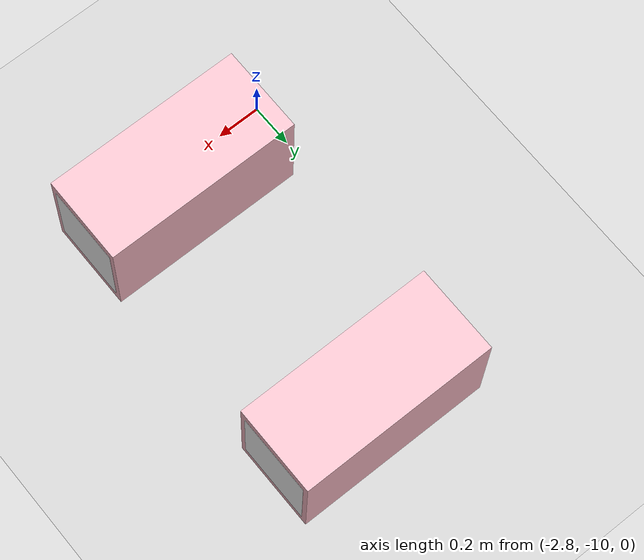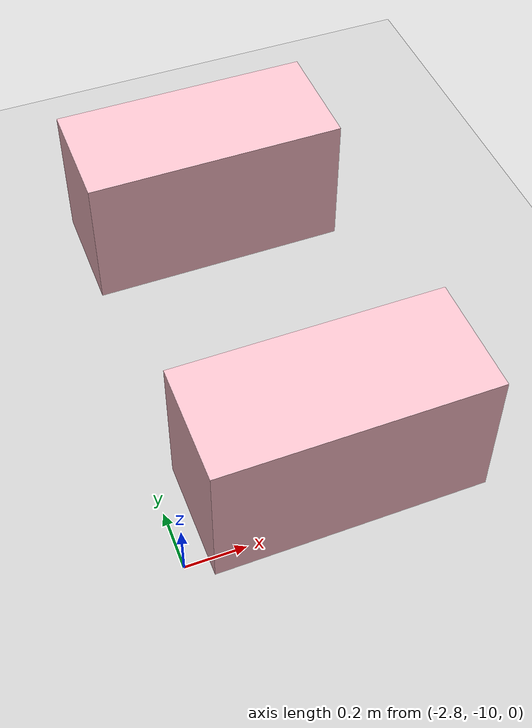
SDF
<sdf version="1.9">
 <world name="pig_pen_16units_world">
  <model name="ground_plane">
   <static>true</static>
   <link name="link">
    <collision name="collision">
     <geometry><plane><normal>0 0 1</normal><size>30 30</size></plane></geometry>
     <surface><friction><ode><mu>1.0</mu><mu2>1.0</mu2></ode></friction></surface>
    </collision>
    <visual name="visual">
     <geometry><plane><normal>0 0 1</normal><size>30 30</size></plane></geometry>
     <material>
      <ambient>0.8 0.8 0.8 1</ambient>
      <diffuse>0.8 0.8 0.8 1</diffuse>
      <specular>0.2 0.2 0.2 1</specular>
     </material>
    </visual>
   </link>
  </model>
  <include><uri>model://farm_pig</uri><name>pig1_b</name><pose>-2.275 -8.675 0.27 0 0 0</pose></include>
  <include><uri>model://farm_pig</uri><name>pig2_a</name><pose>-2.275 -9.865 0.27 0 0 0</pose></include>
 </world>
</sdf>
